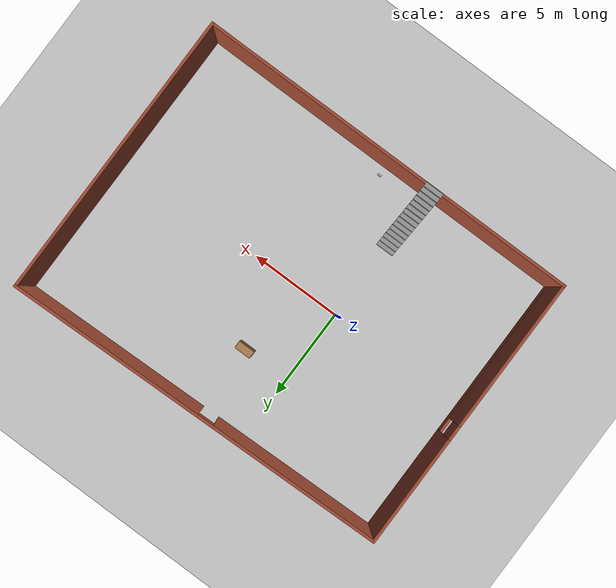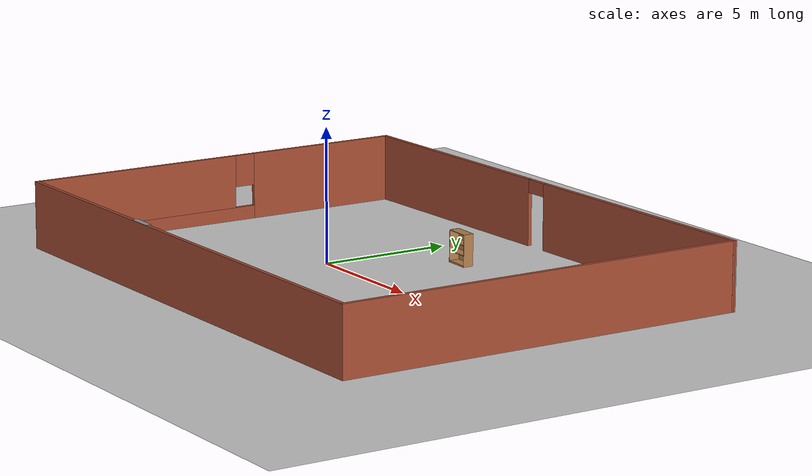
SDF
<sdf version="1.7">
 <world name="default">
  <light name="sun" type="directional">
   <pose>0 0 10 0 -0 0</pose>
   <diffuse>0.8 0.8 0.8 1</diffuse>
   <specular>0.2 0.2 0.2 1</specular>
   <attenuation>
    <range>1000</range>
    <constant>0.9</constant>
    <linear>0.01</linear>
    <quadratic>0.001</quadratic>
   </attenuation>
   <direction>-0.5 0.1 -0.9</direction>
   <spot><inner_angle>0</inner_angle><outer_angle>0</outer_angle><falloff>0</falloff></spot>
  </light>
  <model name="ground_plane">
   <static>1</static>
   <link name="link">
    <collision name="collision">
     <geometry><plane><normal>0 0 1</normal><size>100 100</size></plane></geometry>
     <surface><friction><ode><mu>100</mu><mu2>50</mu2></ode></friction></surface>
    </collision>
    <visual name="visual">
     <cast_shadows>0</cast_shadows>
     <geometry><plane><normal>0 0 1</normal><size>100 100</size></plane></geometry>
     <material>
      <script><uri>file://media/materials/scripts/gazebo.material</uri><name>Gazebo/Grey</name></script>
     </material>
    </visual>
   </link>
  </model>
  <gravity>0 0 -9.8</gravity>
  <magnetic_field>6e-06 2.3e-05 -4.2e-05</magnetic_field>
  <atmosphere type="adiabatic"/>
  <physics type="ode">
   <max_step_size>0.001</max_step_size>
   <real_time_factor>1</real_time_factor>
   <real_time_update_rate>1000</real_time_update_rate>
  </physics>
  <scene><ambient>0.4 0.4 0.4 1</ambient><background>0.7 0.7 0.7 1</background><shadows>1</shadows></scene>
  <audio><device>default</device></audio>
  <spherical_coordinates>
   <surface_model>EARTH_WGS84</surface_model>
   <latitude_deg>0</latitude_deg>
   <longitude_deg>0</longitude_deg>
   <elevation>0</elevation>
   <heading_deg>0</heading_deg>
  </spherical_coordinates>
  <model name="bookshelf">
   <static>1</static>
   <link name="link">
    <inertial><mass>1</mass></inertial>
    <collision name="back">
     <pose>0 0.005 0.6 0 -0 0</pose>
     <geometry><box><size>0.9 0.01 1.2</size></box></geometry>
    </collision>
    <visual name="visual1">
     <pose>0 0.005 0.6 0 -0 0</pose>
     <geometry><box><size>0.9 0.01 1.2</size></box></geometry>
     <material>
      <script><uri>file://media/materials/scripts/gazebo.material</uri><name>Gazebo/Wood</name></script>
     </material>
    </visual>
    <collision name="left_side">
     <pose>0.45 -0.195 0.6 0 -0 0</pose>
     <geometry><box><size>0.02 0.4 1.2</size></box></geometry>
    </collision>
    <visual name="visual2">
     <pose>0.45 -0.195 0.6 0 -0 0</pose>
     <geometry><box><size>0.02 0.4 1.2</size></box></geometry>
     <material>
      <script><uri>file://media/materials/scripts/gazebo.material</uri><name>Gazebo/Wood</name></script>
     </material>
    </visual>
    <collision name="right_side">
     <pose>-0.45 -0.195 0.6 0 -0 0</pose>
     <geometry><box><size>0.02 0.4 1.2</size></box></geometry>
    </collision>
    <visual name="visual3">
     <pose>-0.45 -0.195 0.6 0 -0 0</pose>
     <geometry><box><size>0.02 0.4 1.2</size></box></geometry>
     <material>
      <script><uri>file://media/materials/scripts/gazebo.material</uri><name>Gazebo/Wood</name></script>
     </material>
    </visual>
    <collision name="bottom">
     <pose>0 -0.195 0.03 0 -0 0</pose>
     <geometry><box><size>0.88 0.4 0.06</size></box></geometry>
    </collision>
    <visual name="visual4">
     <pose>0 -0.195 0.03 0 -0 0</pose>
     <geometry><box><size>0.88 0.4 0.06</size></box></geometry>
     <material>
      <script><uri>file://media/materials/scripts/gazebo.material</uri><name>Gazebo/Wood</name></script>
     </material>
    </visual>
    <collision name="top">
     <pose>0 -0.195 1.19 0 -0 0</pose>
     <geometry><box><size>0.88 0.4 0.02</size></box></geometry>
    </collision>
    <visual name="visual5">
     <pose>0 -0.195 1.19 0 -0 0</pose>
     <geometry><box><size>0.88 0.4 0.02</size></box></geometry>
     <material>
      <script><uri>file://media/materials/scripts/gazebo.material</uri><name>Gazebo/Wood</name></script>
     </material>
    </visual>
    <collision name="low_shelf">
     <pose>0 -0.195 0.43 0 -0 0</pose>
     <geometry><box><size>0.88 0.4 0.02</size></box></geometry>
    </collision>
    <visual name="visual6">
     <pose>0 -0.195 0.43 0 -0 0</pose>
     <geometry><box><size>0.88 0.4 0.02</size></box></geometry>
     <material>
      <script><uri>file://media/materials/scripts/gazebo.material</uri><name>Gazebo/Wood</name></script>
     </material>
    </visual>
    <collision name="high_shelf">
     <pose>0 -0.195 0.8 0 -0 0</pose>
     <geometry><box><size>0.88 0.4 0.02</size></box></geometry>
    </collision>
    <visual name="visual7">
     <pose>0 -0.195 0.8 0 -0 0</pose>
     <geometry><box><size>0.88 0.4 0.02</size></box></geometry>
     <material>
      <script><uri>file://media/materials/scripts/gazebo.material</uri><name>Gazebo/Wood</name></script>
     </material>
    </visual>
   </link>
   <pose>2.59716 4.24205 0 0 0.024451 0</pose>
  </model>
  <model name="beer">
   <link name="link">
    <pose>0 0 0.115 0 -0 0</pose>
    <inertial>
     <mass>0.39</mass>
     <inertia><ixx>0.00058</ixx><ixy>0</ixy><ixz>0</ixz><iyy>0.00058</iyy><iyz>0</iyz><izz>0.00019</izz></inertia>
    </inertial>
    <collision name="collision">
     <geometry><cylinder><radius>0.055</radius><length>0.23</length></cylinder></geometry>
    </collision>
    <visual name="visual">
     <geometry><cylinder><radius>0.055</radius><length>0.23</length></cylinder></geometry>
     <material>
      <script>
       <uri>model://beer/materials/scripts</uri>
       <uri>model://beer/materials/textures</uri>
       <name>Beer/Diffuse</name>
      </script>
     </material>
    </visual>
   </link>
   <pose>2.5675 -7.03447 0.054918 -1.57021 -0.924109 1.57033</pose>
  </model>
  <model name="Test">
   <pose>2.71951 0.212905 0 0 -0 0</pose>
   <link name="Stairs_0">
    <visual name="Stairs_0_Visual_0">
     <pose>-2.74521 -4.46556 0.083333 0 -0 0</pose>
     <geometry><box><size>1 0.233333 0.166667</size></box></geometry>
     <material>
      <script><uri>file://media/materials/scripts/gazebo.material</uri><name>Gazebo/Grey</name></script>
      <ambient>1 1 1 1</ambient>
     </material>
     <meta><layer>0</layer></meta>
    </visual>
    <collision name="Stairs_0_Collision_0">
     <geometry><box><size>1 0.233333 0.166667</size></box></geometry>
     <pose>-2.74521 -4.46556 0.083333 0 -0 0</pose>
    </collision>
    <visual name="Stairs_0_Visual_1">
     <pose>-2.74521 -4.6989 0.25 0 -0 0</pose>
     <geometry><box><size>1 0.233333 0.166667</size></box></geometry>
     <material>
      <script><uri>file://media/materials/scripts/gazebo.material</uri><name>Gazebo/Grey</name></script>
      <ambient>1 1 1 1</ambient>
     </material>
     <meta><layer>0</layer></meta>
    </visual>
    <collision name="Stairs_0_Collision_1">
     <geometry><box><size>1 0.233333 0.166667</size></box></geometry>
     <pose>-2.74521 -4.6989 0.25 0 -0 0</pose>
    </collision>
    <visual name="Stairs_0_Visual_2">
     <pose>-2.74521 -4.93223 0.416667 0 -0 0</pose>
     <geometry><box><size>1 0.233333 0.166667</size></box></geometry>
     <material>
      <script><uri>file://media/materials/scripts/gazebo.material</uri><name>Gazebo/Grey</name></script>
      <ambient>1 1 1 1</ambient>
     </material>
     <meta><layer>0</layer></meta>
    </visual>
    <collision name="Stairs_0_Collision_2">
     <geometry><box><size>1 0.233333 0.166667</size></box></geometry>
     <pose>-2.74521 -4.93223 0.416667 0 -0 0</pose>
    </collision>
    <visual name="Stairs_0_Visual_3">
     <pose>-2.74521 -5.16556 0.583333 0 -0 0</pose>
     <geometry><box><size>1 0.233333 0.166667</size></box></geometry>
     <material>
      <script><uri>file://media/materials/scripts/gazebo.material</uri><name>Gazebo/Grey</name></script>
      <ambient>1 1 1 1</ambient>
     </material>
     <meta><layer>0</layer></meta>
    </visual>
    <collision name="Stairs_0_Collision_3">
     <geometry><box><size>1 0.233333 0.166667</size></box></geometry>
     <pose>-2.74521 -5.16556 0.583333 0 -0 0</pose>
    </collision>
    <visual name="Stairs_0_Visual_4">
     <pose>-2.74521 -5.3989 0.75 0 -0 0</pose>
     <geometry><box><size>1 0.233333 0.166667</size></box></geometry>
     <material>
      <script><uri>file://media/materials/scripts/gazebo.material</uri><name>Gazebo/Grey</name></script>
      <ambient>1 1 1 1</ambient>
     </material>
     <meta><layer>0</layer></meta>
    </visual>
    <collision name="Stairs_0_Collision_4">
     <geometry><box><size>1 0.233333 0.166667</size></box></geometry>
     <pose>-2.74521 -5.3989 0.75 0 -0 0</pose>
    </collision>
    <visual name="Stairs_0_Visual_5">
     <pose>-2.74521 -5.63223 0.916667 0 -0 0</pose>
     <geometry><box><size>1 0.233333 0.166667</size></box></geometry>
     <material>
      <script><uri>file://media/materials/scripts/gazebo.material</uri><name>Gazebo/Grey</name></script>
      <ambient>1 1 1 1</ambient>
     </material>
     <meta><layer>0</layer></meta>
    </visual>
    <collision name="Stairs_0_Collision_5">
     <geometry><box><size>1 0.233333 0.166667</size></box></geometry>
     <pose>-2.74521 -5.63223 0.916667 0 -0 0</pose>
    </collision>
    <visual name="Stairs_0_Visual_6">
     <pose>-2.74521 -5.86556 1.08333 0 -0 0</pose>
     <geometry><box><size>1 0.233333 0.166667</size></box></geometry>
     <material>
      <script><uri>file://media/materials/scripts/gazebo.material</uri><name>Gazebo/Grey</name></script>
      <ambient>1 1 1 1</ambient>
     </material>
     <meta><layer>0</layer></meta>
    </visual>
    <collision name="Stairs_0_Collision_6">
     <geometry><box><size>1 0.233333 0.166667</size></box></geometry>
     <pose>-2.74521 -5.86556 1.08333 0 -0 0</pose>
    </collision>
    <visual name="Stairs_0_Visual_7">
     <pose>-2.74521 -6.09889 1.25 0 -0 0</pose>
     <geometry><box><size>1 0.233333 0.166667</size></box></geometry>
     <material>
      <script><uri>file://media/materials/scripts/gazebo.material</uri><name>Gazebo/Grey</name></script>
      <ambient>1 1 1 1</ambient>
     </material>
     <meta><layer>0</layer></meta>
    </visual>
    <collision name="Stairs_0_Collision_7">
     <geometry><box><size>1 0.233333 0.166667</size></box></geometry>
     <pose>-2.74521 -6.09889 1.25 0 -0 0</pose>
    </collision>
    <visual name="Stairs_0_Visual_8">
     <pose>-2.74521 -6.33223 1.41667 0 -0 0</pose>
     <geometry><box><size>1 0.233333 0.166667</size></box></geometry>
     <material>
      <script><uri>file://media/materials/scripts/gazebo.material</uri><name>Gazebo/Grey</name></script>
      <ambient>1 1 1 1</ambient>
     </material>
     <meta><layer>0</layer></meta>
    </visual>
    <collision name="Stairs_0_Collision_8">
     <geometry><box><size>1 0.233333 0.166667</size></box></geometry>
     <pose>-2.74521 -6.33223 1.41667 0 -0 0</pose>
    </collision>
    <visual name="Stairs_0_Visual_9">
     <pose>-2.74521 -6.56556 1.58333 0 -0 0</pose>
     <geometry><box><size>1 0.233333 0.166667</size></box></geometry>
     <material>
      <script><uri>file://media/materials/scripts/gazebo.material</uri><name>Gazebo/Grey</name></script>
      <ambient>1 1 1 1</ambient>
     </material>
     <meta><layer>0</layer></meta>
    </visual>
    <collision name="Stairs_0_Collision_9">
     <geometry><box><size>1 0.233333 0.166667</size></box></geometry>
     <pose>-2.74521 -6.56556 1.58333 0 -0 0</pose>
    </collision>
    <visual name="Stairs_0_Visual_10">
     <pose>-2.74521 -6.79889 1.75 0 -0 0</pose>
     <geometry><box><size>1 0.233333 0.166667</size></box></geometry>
     <material>
      <script><uri>file://media/materials/scripts/gazebo.material</uri><name>Gazebo/Grey</name></script>
      <ambient>1 1 1 1</ambient>
     </material>
     <meta><layer>0</layer></meta>
    </visual>
    <collision name="Stairs_0_Collision_10">
     <geometry><box><size>1 0.233333 0.166667</size></box></geometry>
     <pose>-2.74521 -6.79889 1.75 0 -0 0</pose>
    </collision>
    <visual name="Stairs_0_Visual_11">
     <pose>-2.74521 -7.03223 1.91667 0 -0 0</pose>
     <geometry><box><size>1 0.233333 0.166667</size></box></geometry>
     <material>
      <script><uri>file://media/materials/scripts/gazebo.material</uri><name>Gazebo/Grey</name></script>
      <ambient>1 1 1 1</ambient>
     </material>
     <meta><layer>0</layer></meta>
    </visual>
    <collision name="Stairs_0_Collision_11">
     <geometry><box><size>1 0.233333 0.166667</size></box></geometry>
     <pose>-2.74521 -7.03223 1.91667 0 -0 0</pose>
    </collision>
    <visual name="Stairs_0_Visual_12">
     <pose>-2.74521 -7.26556 2.08333 0 -0 0</pose>
     <geometry><box><size>1 0.233333 0.166667</size></box></geometry>
     <material>
      <script><uri>file://media/materials/scripts/gazebo.material</uri><name>Gazebo/Grey</name></script>
      <ambient>1 1 1 1</ambient>
     </material>
     <meta><layer>0</layer></meta>
    </visual>
    <collision name="Stairs_0_Collision_12">
     <geometry><box><size>1 0.233333 0.166667</size></box></geometry>
     <pose>-2.74521 -7.26556 2.08333 0 -0 0</pose>
    </collision>
    <visual name="Stairs_0_Visual_13">
     <pose>-2.74521 -7.4989 2.25 0 -0 0</pose>
     <geometry><box><size>1 0.233333 0.166667</size></box></geometry>
     <material>
      <script><uri>file://media/materials/scripts/gazebo.material</uri><name>Gazebo/Grey</name></script>
      <ambient>1 1 1 1</ambient>
     </material>
     <meta><layer>0</layer></meta>
    </visual>
    <collision name="Stairs_0_Collision_13">
     <geometry><box><size>1 0.233333 0.166667</size></box></geometry>
     <pose>-2.74521 -7.4989 2.25 0 -0 0</pose>
    </collision>
    <visual name="Stairs_0_Visual_14">
     <pose>-2.74521 -7.73223 2.41667 0 -0 0</pose>
     <geometry><box><size>1 0.233333 0.166667</size></box></geometry>
     <material>
      <script><uri>file://media/materials/scripts/gazebo.material</uri><name>Gazebo/Grey</name></script>
      <ambient>1 1 1 1</ambient>
     </material>
     <meta><layer>0</layer></meta>
    </visual>
    <collision name="Stairs_0_Collision_14">
     <geometry><box><size>1 0.233333 0.166667</size></box></geometry>
     <pose>-2.74521 -7.73223 2.41667 0 -0 0</pose>
    </collision>
   </link>
   <link name="Wall_4">
    <pose>-10.425 -0.250888 0 0 -0 -1.5708</pose>
    <visual name="Wall_4_Visual_0">
     <pose>-4.59097 0 1.25 0 -0 0</pose>
     <geometry><box><size>6.06806 0.15 2.5</size></box></geometry>
     <material>
      <script><uri>file://media/materials/scripts/gazebo.material</uri><name>Gazebo/Bricks</name></script>
      <ambient>1 1 1 1</ambient>
     </material>
     <meta><layer>0</layer></meta>
    </visual>
    <collision name="Wall_4_Collision_0">
     <geometry><box><size>6.06806 0.15 2.5</size></box></geometry>
     <pose>-4.59097 0 1.25 0 -0 0</pose>
    </collision>
    <visual name="Wall_4_Visual_1">
     <pose>3.03403 0 0.25 0 -0 0</pose>
     <geometry><box><size>9.18194 0.15 0.5</size></box></geometry>
     <material>
      <script><uri>file://media/materials/scripts/gazebo.material</uri><name>Gazebo/Bricks</name></script>
      <ambient>1 1 1 1</ambient>
     </material>
     <meta><layer>0</layer></meta>
    </visual>
    <collision name="Wall_4_Collision_1">
     <geometry><box><size>9.18194 0.15 0.5</size></box></geometry>
     <pose>3.03403 0 0.25 0 -0 0</pose>
    </collision>
    <visual name="Wall_4_Visual_2">
     <pose>3.43403 0 1.5 0 -0 0</pose>
     <geometry><box><size>8.38194 0.15 2</size></box></geometry>
     <material>
      <script><uri>file://media/materials/scripts/gazebo.material</uri><name>Gazebo/Bricks</name></script>
      <ambient>1 1 1 1</ambient>
     </material>
     <meta><layer>0</layer></meta>
    </visual>
    <collision name="Wall_4_Collision_2">
     <geometry><box><size>8.38194 0.15 2</size></box></geometry>
     <pose>3.43403 0 1.5 0 -0 0</pose>
    </collision>
    <visual name="Wall_4_Visual_3">
     <pose>-1.15694 0 1.9 0 -0 0</pose>
     <geometry><box><size>0.8 0.15 1.2</size></box></geometry>
     <material>
      <script><uri>file://media/materials/scripts/gazebo.material</uri><name>Gazebo/Bricks</name></script>
      <ambient>1 1 1 1</ambient>
     </material>
     <meta><layer>0</layer></meta>
    </visual>
    <collision name="Wall_4_Collision_3">
     <geometry><box><size>0.8 0.15 1.2</size></box></geometry>
     <pose>-1.15694 0 1.9 0 -0 0</pose>
    </collision>
   </link>
   <link name="Wall_5">
    <collision name="Wall_5_Collision">
     <geometry><box><size>21 0.15 2.5</size></box></geometry>
     <pose>0 0 1.25 0 -0 0</pose>
    </collision>
    <visual name="Wall_5_Visual">
     <pose>0 0 1.25 0 -0 0</pose>
     <geometry><box><size>21 0.15 2.5</size></box></geometry>
     <material>
      <script><uri>file://media/materials/scripts/gazebo.material</uri><name>Gazebo/Bricks</name></script>
      <ambient>1 1 1 1</ambient>
     </material>
     <meta><layer>0</layer></meta>
    </visual>
    <pose>-0 -7.80089 0 0 -0 0</pose>
   </link>
   <link name="Wall_6">
    <collision name="Wall_6_Collision">
     <geometry><box><size>15.75 0.15 2.5</size></box></geometry>
     <pose>0 0 1.25 0 -0 0</pose>
    </collision>
    <visual name="Wall_6_Visual">
     <pose>0 0 1.25 0 -0 0</pose>
     <geometry><box><size>15.75 0.15 2.5</size></box></geometry>
     <material>
      <script><uri>file://media/materials/scripts/gazebo.material</uri><name>Gazebo/Bricks</name></script>
      <ambient>1 1 1 1</ambient>
     </material>
     <meta><layer>0</layer></meta>
    </visual>
    <pose>10.425 -0.000888 0 0 -0 1.5708</pose>
   </link>
   <link name="Wall_7">
    <pose>-0 7.54911 0 0 -0 -3.11762</pose>
    <visual name="Wall_7_Visual_0">
     <pose>-5.16459 0 1.25 0 -0 0</pose>
     <geometry><box><size>10.6768 0.15 2.5</size></box></geometry>
     <material>
      <script><uri>file://media/materials/scripts/gazebo.material</uri><name>Gazebo/Bricks</name></script>
      <ambient>1 1 1 1</ambient>
     </material>
     <meta><layer>0</layer></meta>
    </visual>
    <collision name="Wall_7_Collision_0">
     <geometry><box><size>10.6768 0.15 2.5</size></box></geometry>
     <pose>-5.16459 0 1.25 0 -0 0</pose>
    </collision>
    <visual name="Wall_7_Visual_1">
     <pose>5.78841 0 1.25 0 -0 0</pose>
     <geometry><box><size>9.42918 0.15 2.5</size></box></geometry>
     <material>
      <script><uri>file://media/materials/scripts/gazebo.material</uri><name>Gazebo/Bricks</name></script>
      <ambient>1 1 1 1</ambient>
     </material>
     <meta><layer>0</layer></meta>
    </visual>
    <collision name="Wall_7_Collision_1">
     <geometry><box><size>9.42918 0.15 2.5</size></box></geometry>
     <pose>5.78841 0 1.25 0 -0 0</pose>
    </collision>
    <visual name="Wall_7_Visual_2">
     <pose>0.623818 0 2.25 0 -0 0</pose>
     <geometry><box><size>0.9 0.15 0.5</size></box></geometry>
     <material>
      <script><uri>file://media/materials/scripts/gazebo.material</uri><name>Gazebo/Bricks</name></script>
      <ambient>1 1 1 1</ambient>
     </material>
     <meta><layer>0</layer></meta>
    </visual>
    <collision name="Wall_7_Collision_2">
     <geometry><box><size>0.9 0.15 0.5</size></box></geometry>
     <pose>0.623818 0 2.25 0 -0 0</pose>
    </collision>
   </link>
   <static>1</static>
  </model>
 </world>
</sdf>
